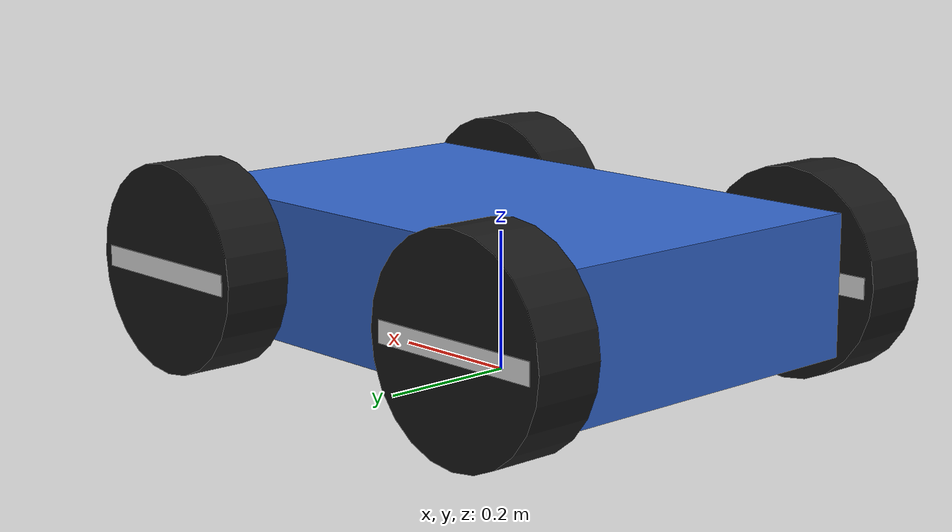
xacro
<?xml version="1.0"?>
<robot name="rover" xmlns:xacro="http://www.ros.org/wiki/xacro">

  <!-- The real rover model, plus the plugins that only exist in simulation -->
  <xacro:include filename="$(find rover_description)/urdf/rover.urdf.xacro" />

  <gazebo>
    <plugin filename="ignition-gazebo-diff-drive-system" name="ignition::gazebo::systems::DiffDrive">
      <left_joint>front_left_wheel_joint</left_joint>
      <left_joint>rear_left_wheel_joint</left_joint>
      <right_joint>front_right_wheel_joint</right_joint>
      <right_joint>rear_right_wheel_joint</right_joint>
      <wheel_separation>${wheel_track}</wheel_separation>
      <wheel_radius>${wheel_radius}</wheel_radius>
      <topic>/cmd_vel</topic>
      <odom_topic>/odom</odom_topic>
      <tf_topic>/tf</tf_topic>
      <frame_id>odom</frame_id>
      <child_frame_id>base_footprint</child_frame_id>
      <odom_publish_frequency>30</odom_publish_frequency>
    </plugin>

    <plugin filename="ignition-gazebo-joint-state-publisher-system" name="ignition::gazebo::systems::JointStatePublisher">
      <topic>/joint_states</topic>
    </plugin>
  </gazebo>

</robot>

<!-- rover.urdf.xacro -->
<robot name="rover" xmlns:xacro="http://www.ros.org/wiki/xacro">

  <xacro:property name="chassis_length" value="0.8" />
  <xacro:property name="chassis_width" value="0.5" />
  <xacro:property name="chassis_height" value="0.2" />
  <xacro:property name="chassis_mass" value="20.0" />

  <xacro:property name="wheel_radius" value="0.15" />
  <xacro:property name="wheel_width" value="0.1" />
  <xacro:property name="wheel_mass" value="2.0" />
  <!-- Distance between the front and rear axles -->
  <xacro:property name="wheel_base" value="0.6" />
  <!-- Distance between the left and right wheel centers -->
  <xacro:property name="wheel_track" value="0.62" />

  <material name="chassis_blue">
    <color rgba="0.2 0.4 0.8 1.0" />
  </material>
  <material name="wheel_black">
    <color rgba="0.1 0.1 0.1 1.0" />
  </material>
  <material name="spoke_white">
    <color rgba="0.9 0.9 0.9 1.0" />
  </material>

  <!-- KDL can't handle a root link with inertia, so the root is an empty link on the ground -->
  <link name="base_footprint" />

  <joint name="base_joint" type="fixed">
    <parent link="base_footprint" />
    <child link="base_link" />
    <origin xyz="0 0 ${wheel_radius}" />
  </joint>

  <link name="base_link">
    <visual>
      <geometry>
        <box size="${chassis_length} ${chassis_width} ${chassis_height}" />
      </geometry>
      <material name="chassis_blue" />
    </visual>
    <collision>
      <geometry>
        <box size="${chassis_length} ${chassis_width} ${chassis_height}" />
      </geometry>
    </collision>
    <inertial>
      <mass value="${chassis_mass}" />
      <inertia
        ixx="${chassis_mass * (chassis_width**2 + chassis_height**2) / 12}"
        iyy="${chassis_mass * (chassis_length**2 + chassis_height**2) / 12}"
        izz="${chassis_mass * (chassis_length**2 + chassis_width**2) / 12}"
        ixy="0" ixz="0" iyz="0" />
    </inertial>
  </link>

  <!-- Each wheel is rotated so its +Z axis points left, which makes positive spin drive forward -->
  <xacro:macro name="wheel" params="name x y">
    <joint name="${name}_wheel_joint" type="continuous">
      <parent link="base_link" />
      <child link="${name}_wheel" />
      <origin xyz="${x} ${y} 0" rpy="${-pi / 2} 0 0" />
      <axis xyz="0 0 1" />
    </joint>

    <link name="${name}_wheel">
      <visual>
        <geometry>
          <cylinder radius="${wheel_radius}" length="${wheel_width}" />
        </geometry>
        <material name="wheel_black" />
      </visual>
      <!-- A plain cylinder looks the same at any angle, so this bar makes spinning visible -->
      <visual>
        <geometry>
          <box size="${wheel_radius * 1.8} 0.03 ${wheel_width + 0.002}" />
        </geometry>
        <material name="spoke_white" />
      </visual>
      <collision>
        <geometry>
          <cylinder radius="${wheel_radius}" length="${wheel_width}" />
        </geometry>
      </collision>
      <inertial>
        <mass value="${wheel_mass}" />
        <inertia
          ixx="${wheel_mass * (3 * wheel_radius**2 + wheel_width**2) / 12}"
          iyy="${wheel_mass * (3 * wheel_radius**2 + wheel_width**2) / 12}"
          izz="${wheel_mass * wheel_radius**2 / 2}"
          ixy="0" ixz="0" iyz="0" />
      </inertial>
    </link>
  </xacro:macro>

  <xacro:wheel name="front_left" x="${wheel_base / 2}" y="${wheel_track / 2}" />
  <xacro:wheel name="front_right" x="${wheel_base / 2}" y="${-wheel_track / 2}" />
  <xacro:wheel name="rear_left" x="${-wheel_base / 2}" y="${wheel_track / 2}" />
  <xacro:wheel name="rear_right" x="${-wheel_base / 2}" y="${-wheel_track / 2}" />

</robot>
